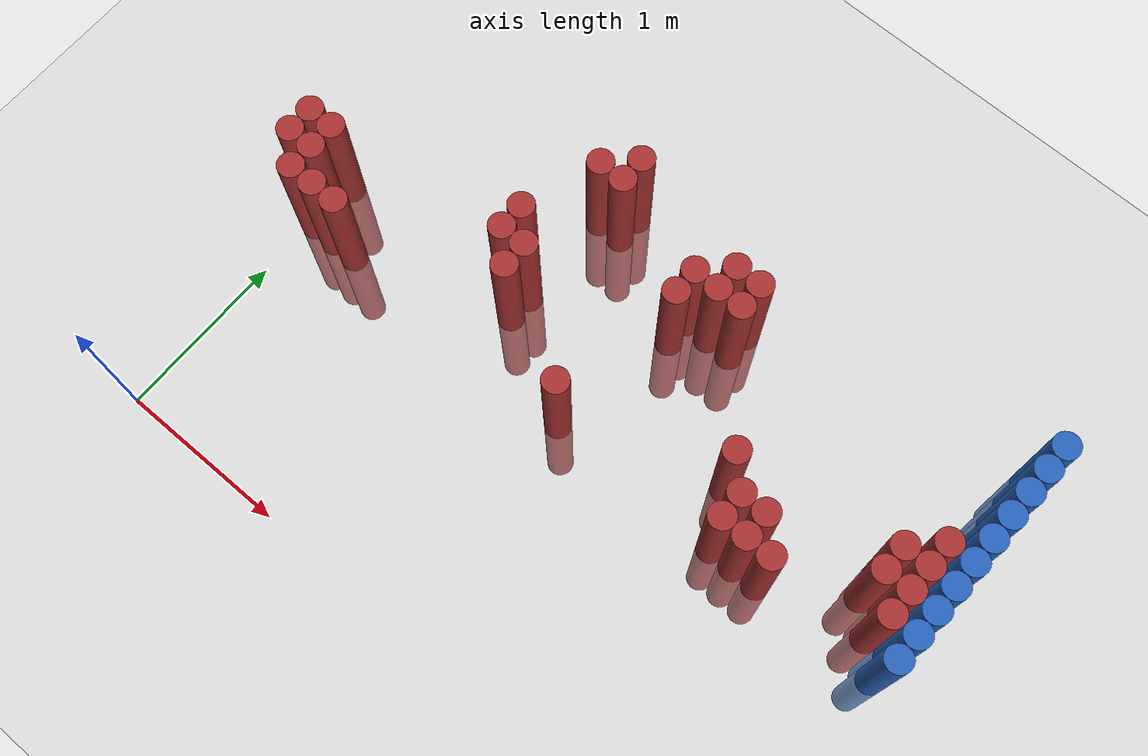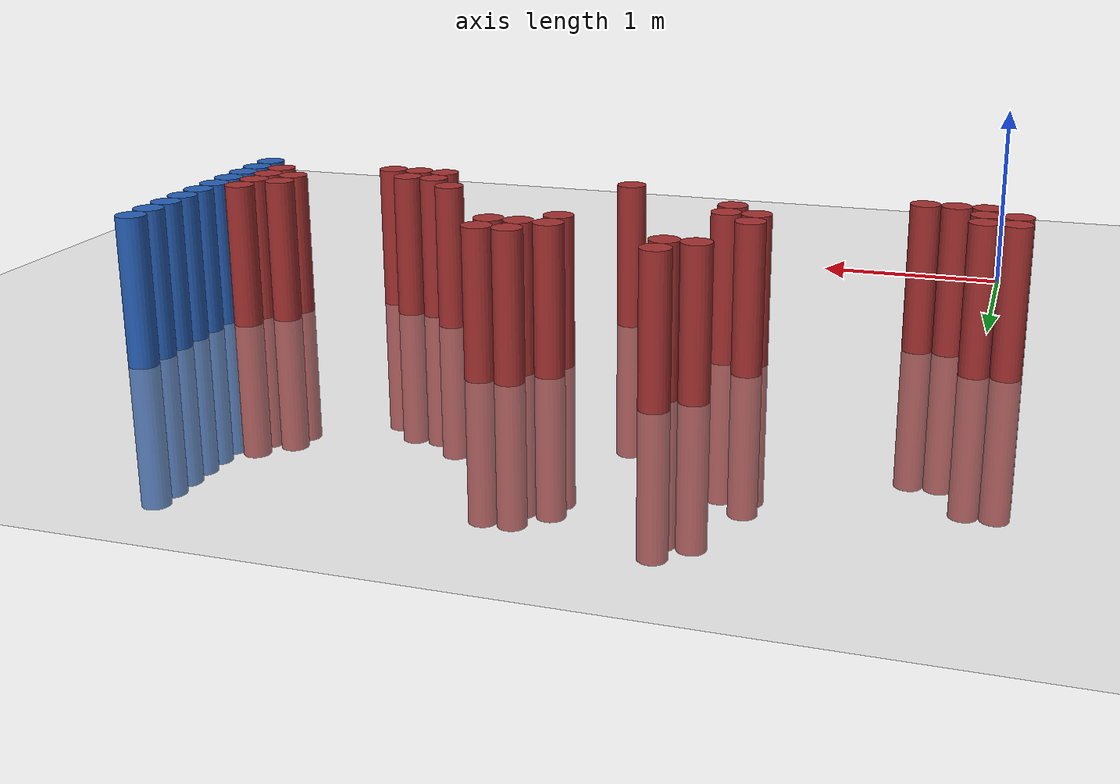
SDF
<sdf version="1.6">
 <world name="default">
  <model name="ground_plane">
   <static>1</static>
   <link name="link">
    <collision name="collision">
     <geometry><plane><normal>0 0 1</normal><size>100 100</size></plane></geometry>
     <surface><friction><ode><mu>100</mu><mu2>50</mu2></ode></friction></surface>
    </collision>
    <visual name="visual">
     <cast_shadows>0</cast_shadows>
     <geometry><plane><normal>0 0 1</normal><size>100 100</size></plane></geometry>
     <material>
      <script><uri>file://media/materials/scripts/gazebo.material</uri><name>Gazebo/Grey</name></script>
     </material>
    </visual>
   </link>
  </model>
  <model name="unit_cylinder_134">
   <static>1</static>
   <pose>3.925000 1.525000 0.000000 0.000000 0.000000 0.000000</pose>
   <link name="link">
    <inertial>
     <mass>1</mass>
     <inertia><ixx>0.145833</ixx><ixy>0</ixy><ixz>0</ixz><iyy>0.145833</iyy><iyz>0</iyz><izz>0.125</izz></inertia>
    </inertial>
    <collision name="collision">
     <geometry><cylinder><radius>0.075000</radius><length>1.5</length></cylinder></geometry>
    </collision>
    <visual name="visual">
     <geometry><cylinder><radius>0.075000</radius><length>1.5</length></cylinder></geometry>
     <material>
      <ambient>0.152000 0.379000 0.720000 1</ambient>
      <diffuse>0.152000 0.379000 0.720000 1</diffuse>
     </material>
     <material>
      <script><name>Gazebo/Grey</name><uri>file://media/materials/scripts/gazebo.material</uri></script>
     </material>
    </visual>
   </link>
  </model>
  <model name="unit_cylinder_136">
   <static>1</static>
   <pose>3.925000 1.675000 0.000000 0.000000 0.000000 0.000000</pose>
   <link name="link">
    <inertial>
     <mass>1</mass>
     <inertia><ixx>0.145833</ixx><ixy>0</ixy><ixz>0</ixz><iyy>0.145833</iyy><iyz>0</iyz><izz>0.125</izz></inertia>
    </inertial>
    <collision name="collision">
     <geometry><cylinder><radius>0.075000</radius><length>1.5</length></cylinder></geometry>
    </collision>
    <visual name="visual">
     <geometry><cylinder><radius>0.075000</radius><length>1.5</length></cylinder></geometry>
     <material>
      <ambient>0.152000 0.379000 0.720000 1</ambient>
      <diffuse>0.152000 0.379000 0.720000 1</diffuse>
     </material>
     <material>
      <script><name>Gazebo/Grey</name><uri>file://media/materials/scripts/gazebo.material</uri></script>
     </material>
    </visual>
   </link>
  </model>
  <model name="unit_cylinder_138">
   <static>1</static>
   <pose>3.925000 1.825000 0.000000 0.000000 0.000000 0.000000</pose>
   <link name="link">
    <inertial>
     <mass>1</mass>
     <inertia><ixx>0.145833</ixx><ixy>0</ixy><ixz>0</ixz><iyy>0.145833</iyy><iyz>0</iyz><izz>0.125</izz></inertia>
    </inertial>
    <collision name="collision">
     <geometry><cylinder><radius>0.075000</radius><length>1.5</length></cylinder></geometry>
    </collision>
    <visual name="visual">
     <geometry><cylinder><radius>0.075000</radius><length>1.5</length></cylinder></geometry>
     <material>
      <ambient>0.152000 0.379000 0.720000 1</ambient>
      <diffuse>0.152000 0.379000 0.720000 1</diffuse>
     </material>
     <material>
      <script><name>Gazebo/Grey</name><uri>file://media/materials/scripts/gazebo.material</uri></script>
     </material>
    </visual>
   </link>
  </model>
  <model name="unit_cylinder_140">
   <static>1</static>
   <pose>3.925000 1.975000 0.000000 0.000000 0.000000 0.000000</pose>
   <link name="link">
    <inertial>
     <mass>1</mass>
     <inertia><ixx>0.145833</ixx><ixy>0</ixy><ixz>0</ixz><iyy>0.145833</iyy><iyz>0</iyz><izz>0.125</izz></inertia>
    </inertial>
    <collision name="collision">
     <geometry><cylinder><radius>0.075000</radius><length>1.5</length></cylinder></geometry>
    </collision>
    <visual name="visual">
     <geometry><cylinder><radius>0.075000</radius><length>1.5</length></cylinder></geometry>
     <material>
      <ambient>0.152000 0.379000 0.720000 1</ambient>
      <diffuse>0.152000 0.379000 0.720000 1</diffuse>
     </material>
     <material>
      <script><name>Gazebo/Grey</name><uri>file://media/materials/scripts/gazebo.material</uri></script>
     </material>
    </visual>
   </link>
  </model>
  <model name="unit_cylinder_142">
   <static>1</static>
   <pose>3.925000 2.125000 0.000000 0.000000 0.000000 0.000000</pose>
   <link name="link">
    <inertial>
     <mass>1</mass>
     <inertia><ixx>0.145833</ixx><ixy>0</ixy><ixz>0</ixz><iyy>0.145833</iyy><iyz>0</iyz><izz>0.125</izz></inertia>
    </inertial>
    <collision name="collision">
     <geometry><cylinder><radius>0.075000</radius><length>1.5</length></cylinder></geometry>
    </collision>
    <visual name="visual">
     <geometry><cylinder><radius>0.075000</radius><length>1.5</length></cylinder></geometry>
     <material>
      <ambient>0.152000 0.379000 0.720000 1</ambient>
      <diffuse>0.152000 0.379000 0.720000 1</diffuse>
     </material>
     <material>
      <script><name>Gazebo/Grey</name><uri>file://media/materials/scripts/gazebo.material</uri></script>
     </material>
    </visual>
   </link>
  </model>
  <model name="unit_cylinder_144">
   <static>1</static>
   <pose>3.925000 2.275000 0.000000 0.000000 0.000000 0.000000</pose>
   <link name="link">
    <inertial>
     <mass>1</mass>
     <inertia><ixx>0.145833</ixx><ixy>0</ixy><ixz>0</ixz><iyy>0.145833</iyy><iyz>0</iyz><izz>0.125</izz></inertia>
    </inertial>
    <collision name="collision">
     <geometry><cylinder><radius>0.075000</radius><length>1.5</length></cylinder></geometry>
    </collision>
    <visual name="visual">
     <geometry><cylinder><radius>0.075000</radius><length>1.5</length></cylinder></geometry>
     <material>
      <ambient>0.152000 0.379000 0.720000 1</ambient>
      <diffuse>0.152000 0.379000 0.720000 1</diffuse>
     </material>
     <material>
      <script><name>Gazebo/Grey</name><uri>file://media/materials/scripts/gazebo.material</uri></script>
     </material>
    </visual>
   </link>
  </model>
  <model name="unit_cylinder_146">
   <static>1</static>
   <pose>3.925000 2.425000 0.000000 0.000000 0.000000 0.000000</pose>
   <link name="link">
    <inertial>
     <mass>1</mass>
     <inertia><ixx>0.145833</ixx><ixy>0</ixy><ixz>0</ixz><iyy>0.145833</iyy><iyz>0</iyz><izz>0.125</izz></inertia>
    </inertial>
    <collision name="collision">
     <geometry><cylinder><radius>0.075000</radius><length>1.5</length></cylinder></geometry>
    </collision>
    <visual name="visual">
     <geometry><cylinder><radius>0.075000</radius><length>1.5</length></cylinder></geometry>
     <material>
      <ambient>0.152000 0.379000 0.720000 1</ambient>
      <diffuse>0.152000 0.379000 0.720000 1</diffuse>
     </material>
     <material>
      <script><name>Gazebo/Grey</name><uri>file://media/materials/scripts/gazebo.material</uri></script>
     </material>
    </visual>
   </link>
  </model>
  <model name="unit_cylinder_148">
   <static>1</static>
   <pose>3.925000 2.575000 0.000000 0.000000 0.000000 0.000000</pose>
   <link name="link">
    <inertial>
     <mass>1</mass>
     <inertia><ixx>0.145833</ixx><ixy>0</ixy><ixz>0</ixz><iyy>0.145833</iyy><iyz>0</iyz><izz>0.125</izz></inertia>
    </inertial>
    <collision name="collision">
     <geometry><cylinder><radius>0.075000</radius><length>1.5</length></cylinder></geometry>
    </collision>
    <visual name="visual">
     <geometry><cylinder><radius>0.075000</radius><length>1.5</length></cylinder></geometry>
     <material>
      <ambient>0.152000 0.379000 0.720000 1</ambient>
      <diffuse>0.152000 0.379000 0.720000 1</diffuse>
     </material>
     <material>
      <script><name>Gazebo/Grey</name><uri>file://media/materials/scripts/gazebo.material</uri></script>
     </material>
    </visual>
   </link>
  </model>
  <model name="unit_cylinder_150">
   <static>1</static>
   <pose>3.925000 2.725000 0.000000 0.000000 0.000000 0.000000</pose>
   <link name="link">
    <inertial>
     <mass>1</mass>
     <inertia><ixx>0.145833</ixx><ixy>0</ixy><ixz>0</ixz><iyy>0.145833</iyy><iyz>0</iyz><izz>0.125</izz></inertia>
    </inertial>
    <collision name="collision">
     <geometry><cylinder><radius>0.075000</radius><length>1.5</length></cylinder></geometry>
    </collision>
    <visual name="visual">
     <geometry><cylinder><radius>0.075000</radius><length>1.5</length></cylinder></geometry>
     <material>
      <ambient>0.152000 0.379000 0.720000 1</ambient>
      <diffuse>0.152000 0.379000 0.720000 1</diffuse>
     </material>
     <material>
      <script><name>Gazebo/Grey</name><uri>file://media/materials/scripts/gazebo.material</uri></script>
     </material>
    </visual>
   </link>
  </model>
  <model name="unit_cylinder_328">
   <static>1</static>
   <pose>-0.125000 1.525000 0.000000 0.000000 0.000000 0.000000</pose>
   <link name="link">
    <inertial>
     <mass>1</mass>
     <inertia><ixx>0.145833</ixx><ixy>0</ixy><ixz>0</ixz><iyy>0.145833</iyy><iyz>0</iyz><izz>0.125</izz></inertia>
    </inertial>
    <collision name="collision">
     <geometry><cylinder><radius>0.075000</radius><length>1.5</length></cylinder></geometry>
    </collision>
    <visual name="visual">
     <geometry><cylinder><radius>0.075000</radius><length>1.5</length></cylinder></geometry>
     <material>
      <ambient>0.648000 0.192000 0.192000 1</ambient>
      <diffuse>0.648000 0.192000 0.192000 1</diffuse>
     </material>
     <material>
      <script><name>Gazebo/Grey</name><uri>file://media/materials/scripts/gazebo.material</uri></script>
     </material>
    </visual>
   </link>
  </model>
  <model name="unit_cylinder_329">
   <static>1</static>
   <pose>-0.125000 1.675000 0.000000 0.000000 0.000000 0.000000</pose>
   <link name="link">
    <inertial>
     <mass>1</mass>
     <inertia><ixx>0.145833</ixx><ixy>0</ixy><ixz>0</ixz><iyy>0.145833</iyy><iyz>0</iyz><izz>0.125</izz></inertia>
    </inertial>
    <collision name="collision">
     <geometry><cylinder><radius>0.075000</radius><length>1.5</length></cylinder></geometry>
    </collision>
    <visual name="visual">
     <geometry><cylinder><radius>0.075000</radius><length>1.5</length></cylinder></geometry>
     <material>
      <ambient>0.648000 0.192000 0.192000 1</ambient>
      <diffuse>0.648000 0.192000 0.192000 1</diffuse>
     </material>
     <material>
      <script><name>Gazebo/Grey</name><uri>file://media/materials/scripts/gazebo.material</uri></script>
     </material>
    </visual>
   </link>
  </model>
  <model name="unit_cylinder_333">
   <static>1</static>
   <pose>0.025000 1.375000 0.000000 0.000000 0.000000 0.000000</pose>
   <link name="link">
    <inertial>
     <mass>1</mass>
     <inertia><ixx>0.145833</ixx><ixy>0</ixy><ixz>0</ixz><iyy>0.145833</iyy><iyz>0</iyz><izz>0.125</izz></inertia>
    </inertial>
    <collision name="collision">
     <geometry><cylinder><radius>0.075000</radius><length>1.5</length></cylinder></geometry>
    </collision>
    <visual name="visual">
     <geometry><cylinder><radius>0.075000</radius><length>1.5</length></cylinder></geometry>
     <material>
      <ambient>0.648000 0.192000 0.192000 1</ambient>
      <diffuse>0.648000 0.192000 0.192000 1</diffuse>
     </material>
     <material>
      <script><name>Gazebo/Grey</name><uri>file://media/materials/scripts/gazebo.material</uri></script>
     </material>
    </visual>
   </link>
  </model>
  <model name="unit_cylinder_334">
   <static>1</static>
   <pose>0.025000 1.525000 0.000000 0.000000 0.000000 0.000000</pose>
   <link name="link">
    <inertial>
     <mass>1</mass>
     <inertia><ixx>0.145833</ixx><ixy>0</ixy><ixz>0</ixz><iyy>0.145833</iyy><iyz>0</iyz><izz>0.125</izz></inertia>
    </inertial>
    <collision name="collision">
     <geometry><cylinder><radius>0.075000</radius><length>1.5</length></cylinder></geometry>
    </collision>
    <visual name="visual">
     <geometry><cylinder><radius>0.075000</radius><length>1.5</length></cylinder></geometry>
     <material>
      <ambient>0.648000 0.192000 0.192000 1</ambient>
      <diffuse>0.648000 0.192000 0.192000 1</diffuse>
     </material>
     <material>
      <script><name>Gazebo/Grey</name><uri>file://media/materials/scripts/gazebo.material</uri></script>
     </material>
    </visual>
   </link>
  </model>
  <model name="unit_cylinder_335">
   <static>1</static>
   <pose>0.025000 1.675000 0.000000 0.000000 0.000000 0.000000</pose>
   <link name="link">
    <inertial>
     <mass>1</mass>
     <inertia><ixx>0.145833</ixx><ixy>0</ixy><ixz>0</ixz><iyy>0.145833</iyy><iyz>0</iyz><izz>0.125</izz></inertia>
    </inertial>
    <collision name="collision">
     <geometry><cylinder><radius>0.075000</radius><length>1.5</length></cylinder></geometry>
    </collision>
    <visual name="visual">
     <geometry><cylinder><radius>0.075000</radius><length>1.5</length></cylinder></geometry>
     <material>
      <ambient>0.648000 0.192000 0.192000 1</ambient>
      <diffuse>0.648000 0.192000 0.192000 1</diffuse>
     </material>
     <material>
      <script><name>Gazebo/Grey</name><uri>file://media/materials/scripts/gazebo.material</uri></script>
     </material>
    </visual>
   </link>
  </model>
  <model name="unit_cylinder_339">
   <static>1</static>
   <pose>0.175000 1.375000 0.000000 0.000000 0.000000 0.000000</pose>
   <link name="link">
    <inertial>
     <mass>1</mass>
     <inertia><ixx>0.145833</ixx><ixy>0</ixy><ixz>0</ixz><iyy>0.145833</iyy><iyz>0</iyz><izz>0.125</izz></inertia>
    </inertial>
    <collision name="collision">
     <geometry><cylinder><radius>0.075000</radius><length>1.5</length></cylinder></geometry>
    </collision>
    <visual name="visual">
     <geometry><cylinder><radius>0.075000</radius><length>1.5</length></cylinder></geometry>
     <material>
      <ambient>0.648000 0.192000 0.192000 1</ambient>
      <diffuse>0.648000 0.192000 0.192000 1</diffuse>
     </material>
     <material>
      <script><name>Gazebo/Grey</name><uri>file://media/materials/scripts/gazebo.material</uri></script>
     </material>
    </visual>
   </link>
  </model>
  <model name="unit_cylinder_343">
   <static>1</static>
   <pose>0.325000 1.375000 0.000000 0.000000 0.000000 0.000000</pose>
   <link name="link">
    <inertial>
     <mass>1</mass>
     <inertia><ixx>0.145833</ixx><ixy>0</ixy><ixz>0</ixz><iyy>0.145833</iyy><iyz>0</iyz><izz>0.125</izz></inertia>
    </inertial>
    <collision name="collision">
     <geometry><cylinder><radius>0.075000</radius><length>1.5</length></cylinder></geometry>
    </collision>
    <visual name="visual">
     <geometry><cylinder><radius>0.075000</radius><length>1.5</length></cylinder></geometry>
     <material>
      <ambient>0.648000 0.192000 0.192000 1</ambient>
      <diffuse>0.648000 0.192000 0.192000 1</diffuse>
     </material>
     <material>
      <script><name>Gazebo/Grey</name><uri>file://media/materials/scripts/gazebo.material</uri></script>
     </material>
    </visual>
   </link>
  </model>
  <model name="unit_cylinder_347">
   <static>1</static>
   <pose>1.075000 1.825000 0.000000 0.000000 0.000000 0.000000</pose>
   <link name="link">
    <inertial>
     <mass>1</mass>
     <inertia><ixx>0.145833</ixx><ixy>0</ixy><ixz>0</ixz><iyy>0.145833</iyy><iyz>0</iyz><izz>0.125</izz></inertia>
    </inertial>
    <collision name="collision">
     <geometry><cylinder><radius>0.075000</radius><length>1.5</length></cylinder></geometry>
    </collision>
    <visual name="visual">
     <geometry><cylinder><radius>0.075000</radius><length>1.5</length></cylinder></geometry>
     <material>
      <ambient>0.648000 0.192000 0.192000 1</ambient>
      <diffuse>0.648000 0.192000 0.192000 1</diffuse>
     </material>
     <material>
      <script><name>Gazebo/Grey</name><uri>file://media/materials/scripts/gazebo.material</uri></script>
     </material>
    </visual>
   </link>
  </model>
  <model name="unit_cylinder_348">
   <static>1</static>
   <pose>1.075000 1.975000 0.000000 0.000000 0.000000 0.000000</pose>
   <link name="link">
    <inertial>
     <mass>1</mass>
     <inertia><ixx>0.145833</ixx><ixy>0</ixy><ixz>0</ixz><iyy>0.145833</iyy><iyz>0</iyz><izz>0.125</izz></inertia>
    </inertial>
    <collision name="collision">
     <geometry><cylinder><radius>0.075000</radius><length>1.5</length></cylinder></geometry>
    </collision>
    <visual name="visual">
     <geometry><cylinder><radius>0.075000</radius><length>1.5</length></cylinder></geometry>
     <material>
      <ambient>0.648000 0.192000 0.192000 1</ambient>
      <diffuse>0.648000 0.192000 0.192000 1</diffuse>
     </material>
     <material>
      <script><name>Gazebo/Grey</name><uri>file://media/materials/scripts/gazebo.material</uri></script>
     </material>
    </visual>
   </link>
  </model>
  <model name="unit_cylinder_353">
   <static>1</static>
   <pose>1.225000 1.675000 0.000000 0.000000 0.000000 0.000000</pose>
   <link name="link">
    <inertial>
     <mass>1</mass>
     <inertia><ixx>0.145833</ixx><ixy>0</ixy><ixz>0</ixz><iyy>0.145833</iyy><iyz>0</iyz><izz>0.125</izz></inertia>
    </inertial>
    <collision name="collision">
     <geometry><cylinder><radius>0.075000</radius><length>1.5</length></cylinder></geometry>
    </collision>
    <visual name="visual">
     <geometry><cylinder><radius>0.075000</radius><length>1.5</length></cylinder></geometry>
     <material>
      <ambient>0.648000 0.192000 0.192000 1</ambient>
      <diffuse>0.648000 0.192000 0.192000 1</diffuse>
     </material>
     <material>
      <script><name>Gazebo/Grey</name><uri>file://media/materials/scripts/gazebo.material</uri></script>
     </material>
    </visual>
   </link>
  </model>
  <model name="unit_cylinder_354">
   <static>1</static>
   <pose>1.225000 1.825000 0.000000 0.000000 0.000000 0.000000</pose>
   <link name="link">
    <inertial>
     <mass>1</mass>
     <inertia><ixx>0.145833</ixx><ixy>0</ixy><ixz>0</ixz><iyy>0.145833</iyy><iyz>0</iyz><izz>0.125</izz></inertia>
    </inertial>
    <collision name="collision">
     <geometry><cylinder><radius>0.075000</radius><length>1.5</length></cylinder></geometry>
    </collision>
    <visual name="visual">
     <geometry><cylinder><radius>0.075000</radius><length>1.5</length></cylinder></geometry>
     <material>
      <ambient>0.648000 0.192000 0.192000 1</ambient>
      <diffuse>0.648000 0.192000 0.192000 1</diffuse>
     </material>
     <material>
      <script><name>Gazebo/Grey</name><uri>file://media/materials/scripts/gazebo.material</uri></script>
     </material>
    </visual>
   </link>
  </model>
  <model name="unit_cylinder_355">
   <static>1</static>
   <pose>1.225000 2.425000 0.000000 0.000000 0.000000 0.000000</pose>
   <link name="link">
    <inertial>
     <mass>1</mass>
     <inertia><ixx>0.145833</ixx><ixy>0</ixy><ixz>0</ixz><iyy>0.145833</iyy><iyz>0</iyz><izz>0.125</izz></inertia>
    </inertial>
    <collision name="collision">
     <geometry><cylinder><radius>0.075000</radius><length>1.5</length></cylinder></geometry>
    </collision>
    <visual name="visual">
     <geometry><cylinder><radius>0.075000</radius><length>1.5</length></cylinder></geometry>
     <material>
      <ambient>0.648000 0.192000 0.192000 1</ambient>
      <diffuse>0.648000 0.192000 0.192000 1</diffuse>
     </material>
     <material>
      <script><name>Gazebo/Grey</name><uri>file://media/materials/scripts/gazebo.material</uri></script>
     </material>
    </visual>
   </link>
  </model>
  <model name="unit_cylinder_357">
   <static>1</static>
   <pose>1.375000 2.425000 0.000000 0.000000 0.000000 0.000000</pose>
   <link name="link">
    <inertial>
     <mass>1</mass>
     <inertia><ixx>0.145833</ixx><ixy>0</ixy><ixz>0</ixz><iyy>0.145833</iyy><iyz>0</iyz><izz>0.125</izz></inertia>
    </inertial>
    <collision name="collision">
     <geometry><cylinder><radius>0.075000</radius><length>1.5</length></cylinder></geometry>
    </collision>
    <visual name="visual">
     <geometry><cylinder><radius>0.075000</radius><length>1.5</length></cylinder></geometry>
     <material>
      <ambient>0.648000 0.192000 0.192000 1</ambient>
      <diffuse>0.648000 0.192000 0.192000 1</diffuse>
     </material>
     <material>
      <script><name>Gazebo/Grey</name><uri>file://media/materials/scripts/gazebo.material</uri></script>
     </material>
    </visual>
   </link>
  </model>
  <model name="unit_cylinder_358">
   <static>1</static>
   <pose>1.375000 2.575000 0.000000 0.000000 0.000000 0.000000</pose>
   <link name="link">
    <inertial>
     <mass>1</mass>
     <inertia><ixx>0.145833</ixx><ixy>0</ixy><ixz>0</ixz><iyy>0.145833</iyy><iyz>0</iyz><izz>0.125</izz></inertia>
    </inertial>
    <collision name="collision">
     <geometry><cylinder><radius>0.075000</radius><length>1.5</length></cylinder></geometry>
    </collision>
    <visual name="visual">
     <geometry><cylinder><radius>0.075000</radius><length>1.5</length></cylinder></geometry>
     <material>
      <ambient>0.648000 0.192000 0.192000 1</ambient>
      <diffuse>0.648000 0.192000 0.192000 1</diffuse>
     </material>
     <material>
      <script><name>Gazebo/Grey</name><uri>file://media/materials/scripts/gazebo.material</uri></script>
     </material>
    </visual>
   </link>
  </model>
  <model name="unit_cylinder_377">
   <static>1</static>
   <pose>1.825000 1.375000 0.000000 0.000000 0.000000 0.000000</pose>
   <link name="link">
    <inertial>
     <mass>1</mass>
     <inertia><ixx>0.145833</ixx><ixy>0</ixy><ixz>0</ixz><iyy>0.145833</iyy><iyz>0</iyz><izz>0.125</izz></inertia>
    </inertial>
    <collision name="collision">
     <geometry><cylinder><radius>0.075000</radius><length>1.5</length></cylinder></geometry>
    </collision>
    <visual name="visual">
     <geometry><cylinder><radius>0.075000</radius><length>1.5</length></cylinder></geometry>
     <material>
      <ambient>0.648000 0.192000 0.192000 1</ambient>
      <diffuse>0.648000 0.192000 0.192000 1</diffuse>
     </material>
     <material>
      <script><name>Gazebo/Grey</name><uri>file://media/materials/scripts/gazebo.material</uri></script>
     </material>
    </visual>
   </link>
  </model>
  <model name="unit_cylinder_381">
   <static>1</static>
   <pose>1.975000 2.125000 0.000000 0.000000 0.000000 0.000000</pose>
   <link name="link">
    <inertial>
     <mass>1</mass>
     <inertia><ixx>0.145833</ixx><ixy>0</ixy><ixz>0</ixz><iyy>0.145833</iyy><iyz>0</iyz><izz>0.125</izz></inertia>
    </inertial>
    <collision name="collision">
     <geometry><cylinder><radius>0.075000</radius><length>1.5</length></cylinder></geometry>
    </collision>
    <visual name="visual">
     <geometry><cylinder><radius>0.075000</radius><length>1.5</length></cylinder></geometry>
     <material>
      <ambient>0.648000 0.192000 0.192000 1</ambient>
      <diffuse>0.648000 0.192000 0.192000 1</diffuse>
     </material>
     <material>
      <script><name>Gazebo/Grey</name><uri>file://media/materials/scripts/gazebo.material</uri></script>
     </material>
    </visual>
   </link>
  </model>
  <model name="unit_cylinder_382">
   <static>1</static>
   <pose>1.975000 2.275000 0.000000 0.000000 0.000000 0.000000</pose>
   <link name="link">
    <inertial>
     <mass>1</mass>
     <inertia><ixx>0.145833</ixx><ixy>0</ixy><ixz>0</ixz><iyy>0.145833</iyy><iyz>0</iyz><izz>0.125</izz></inertia>
    </inertial>
    <collision name="collision">
     <geometry><cylinder><radius>0.075000</radius><length>1.5</length></cylinder></geometry>
    </collision>
    <visual name="visual">
     <geometry><cylinder><radius>0.075000</radius><length>1.5</length></cylinder></geometry>
     <material>
      <ambient>0.648000 0.192000 0.192000 1</ambient>
      <diffuse>0.648000 0.192000 0.192000 1</diffuse>
     </material>
     <material>
      <script><name>Gazebo/Grey</name><uri>file://media/materials/scripts/gazebo.material</uri></script>
     </material>
    </visual>
   </link>
  </model>
  <model name="unit_cylinder_385">
   <static>1</static>
   <pose>2.125000 2.275000 0.000000 0.000000 0.000000 0.000000</pose>
   <link name="link">
    <inertial>
     <mass>1</mass>
     <inertia><ixx>0.145833</ixx><ixy>0</ixy><ixz>0</ixz><iyy>0.145833</iyy><iyz>0</iyz><izz>0.125</izz></inertia>
    </inertial>
    <collision name="collision">
     <geometry><cylinder><radius>0.075000</radius><length>1.5</length></cylinder></geometry>
    </collision>
    <visual name="visual">
     <geometry><cylinder><radius>0.075000</radius><length>1.5</length></cylinder></geometry>
     <material>
      <ambient>0.648000 0.192000 0.192000 1</ambient>
      <diffuse>0.648000 0.192000 0.192000 1</diffuse>
     </material>
     <material>
      <script><name>Gazebo/Grey</name><uri>file://media/materials/scripts/gazebo.material</uri></script>
     </material>
    </visual>
   </link>
  </model>
  <model name="unit_cylinder_386">
   <static>1</static>
   <pose>2.125000 2.425000 0.000000 0.000000 0.000000 0.000000</pose>
   <link name="link">
    <inertial>
     <mass>1</mass>
     <inertia><ixx>0.145833</ixx><ixy>0</ixy><ixz>0</ixz><iyy>0.145833</iyy><iyz>0</iyz><izz>0.125</izz></inertia>
    </inertial>
    <collision name="collision">
     <geometry><cylinder><radius>0.075000</radius><length>1.5</length></cylinder></geometry>
    </collision>
    <visual name="visual">
     <geometry><cylinder><radius>0.075000</radius><length>1.5</length></cylinder></geometry>
     <material>
      <ambient>0.648000 0.192000 0.192000 1</ambient>
      <diffuse>0.648000 0.192000 0.192000 1</diffuse>
     </material>
     <material>
      <script><name>Gazebo/Grey</name><uri>file://media/materials/scripts/gazebo.material</uri></script>
     </material>
    </visual>
   </link>
  </model>
  <model name="unit_cylinder_388">
   <static>1</static>
   <pose>2.275000 2.275000 0.000000 0.000000 0.000000 0.000000</pose>
   <link name="link">
    <inertial>
     <mass>1</mass>
     <inertia><ixx>0.145833</ixx><ixy>0</ixy><ixz>0</ixz><iyy>0.145833</iyy><iyz>0</iyz><izz>0.125</izz></inertia>
    </inertial>
    <collision name="collision">
     <geometry><cylinder><radius>0.075000</radius><length>1.5</length></cylinder></geometry>
    </collision>
    <visual name="visual">
     <geometry><cylinder><radius>0.075000</radius><length>1.5</length></cylinder></geometry>
     <material>
      <ambient>0.648000 0.192000 0.192000 1</ambient>
      <diffuse>0.648000 0.192000 0.192000 1</diffuse>
     </material>
     <material>
      <script><name>Gazebo/Grey</name><uri>file://media/materials/scripts/gazebo.material</uri></script>
     </material>
    </visual>
   </link>
  </model>
  <model name="unit_cylinder_389">
   <static>1</static>
   <pose>2.275000 2.425000 0.000000 0.000000 0.000000 0.000000</pose>
   <link name="link">
    <inertial>
     <mass>1</mass>
     <inertia><ixx>0.145833</ixx><ixy>0</ixy><ixz>0</ixz><iyy>0.145833</iyy><iyz>0</iyz><izz>0.125</izz></inertia>
    </inertial>
    <collision name="collision">
     <geometry><cylinder><radius>0.075000</radius><length>1.5</length></cylinder></geometry>
    </collision>
    <visual name="visual">
     <geometry><cylinder><radius>0.075000</radius><length>1.5</length></cylinder></geometry>
     <material>
      <ambient>0.648000 0.192000 0.192000 1</ambient>
      <diffuse>0.648000 0.192000 0.192000 1</diffuse>
     </material>
     <material>
      <script><name>Gazebo/Grey</name><uri>file://media/materials/scripts/gazebo.material</uri></script>
     </material>
    </visual>
   </link>
  </model>
  <model name="unit_cylinder_407">
   <static>1</static>
   <pose>2.725000 1.675000 0.000000 0.000000 0.000000 0.000000</pose>
   <link name="link">
    <inertial>
     <mass>1</mass>
     <inertia><ixx>0.145833</ixx><ixy>0</ixy><ixz>0</ixz><iyy>0.145833</iyy><iyz>0</iyz><izz>0.125</izz></inertia>
    </inertial>
    <collision name="collision">
     <geometry><cylinder><radius>0.075000</radius><length>1.5</length></cylinder></geometry>
    </collision>
    <visual name="visual">
     <geometry><cylinder><radius>0.075000</radius><length>1.5</length></cylinder></geometry>
     <material>
      <ambient>0.648000 0.192000 0.192000 1</ambient>
      <diffuse>0.648000 0.192000 0.192000 1</diffuse>
     </material>
     <material>
      <script><name>Gazebo/Grey</name><uri>file://media/materials/scripts/gazebo.material</uri></script>
     </material>
    </visual>
   </link>
  </model>
  <model name="unit_cylinder_414">
   <static>1</static>
   <pose>2.875000 1.375000 0.000000 0.000000 0.000000 0.000000</pose>
   <link name="link">
    <inertial>
     <mass>1</mass>
     <inertia><ixx>0.145833</ixx><ixy>0</ixy><ixz>0</ixz><iyy>0.145833</iyy><iyz>0</iyz><izz>0.125</izz></inertia>
    </inertial>
    <collision name="collision">
     <geometry><cylinder><radius>0.075000</radius><length>1.5</length></cylinder></geometry>
    </collision>
    <visual name="visual">
     <geometry><cylinder><radius>0.075000</radius><length>1.5</length></cylinder></geometry>
     <material>
      <ambient>0.648000 0.192000 0.192000 1</ambient>
      <diffuse>0.648000 0.192000 0.192000 1</diffuse>
     </material>
     <material>
      <script><name>Gazebo/Grey</name><uri>file://media/materials/scripts/gazebo.material</uri></script>
     </material>
    </visual>
   </link>
  </model>
  <model name="unit_cylinder_415">
   <static>1</static>
   <pose>2.875000 1.525000 0.000000 0.000000 0.000000 0.000000</pose>
   <link name="link">
    <inertial>
     <mass>1</mass>
     <inertia><ixx>0.145833</ixx><ixy>0</ixy><ixz>0</ixz><iyy>0.145833</iyy><iyz>0</iyz><izz>0.125</izz></inertia>
    </inertial>
    <collision name="collision">
     <geometry><cylinder><radius>0.075000</radius><length>1.5</length></cylinder></geometry>
    </collision>
    <visual name="visual">
     <geometry><cylinder><radius>0.075000</radius><length>1.5</length></cylinder></geometry>
     <material>
      <ambient>0.648000 0.192000 0.192000 1</ambient>
      <diffuse>0.648000 0.192000 0.192000 1</diffuse>
     </material>
     <material>
      <script><name>Gazebo/Grey</name><uri>file://media/materials/scripts/gazebo.material</uri></script>
     </material>
    </visual>
   </link>
  </model>
  <model name="unit_cylinder_417">
   <static>1</static>
   <pose>3.025000 1.375000 0.000000 0.000000 0.000000 0.000000</pose>
   <link name="link">
    <inertial>
     <mass>1</mass>
     <inertia><ixx>0.145833</ixx><ixy>0</ixy><ixz>0</ixz><iyy>0.145833</iyy><iyz>0</iyz><izz>0.125</izz></inertia>
    </inertial>
    <collision name="collision">
     <geometry><cylinder><radius>0.075000</radius><length>1.5</length></cylinder></geometry>
    </collision>
    <visual name="visual">
     <geometry><cylinder><radius>0.075000</radius><length>1.5</length></cylinder></geometry>
     <material>
      <ambient>0.648000 0.192000 0.192000 1</ambient>
      <diffuse>0.648000 0.192000 0.192000 1</diffuse>
     </material>
     <material>
      <script><name>Gazebo/Grey</name><uri>file://media/materials/scripts/gazebo.material</uri></script>
     </material>
    </visual>
   </link>
  </model>
  <model name="unit_cylinder_418">
   <static>1</static>
   <pose>3.025000 1.525000 0.000000 0.000000 0.000000 0.000000</pose>
   <link name="link">
    <inertial>
     <mass>1</mass>
     <inertia><ixx>0.145833</ixx><ixy>0</ixy><ixz>0</ixz><iyy>0.145833</iyy><iyz>0</iyz><izz>0.125</izz></inertia>
    </inertial>
    <collision name="collision">
     <geometry><cylinder><radius>0.075000</radius><length>1.5</length></cylinder></geometry>
    </collision>
    <visual name="visual">
     <geometry><cylinder><radius>0.075000</radius><length>1.5</length></cylinder></geometry>
     <material>
      <ambient>0.648000 0.192000 0.192000 1</ambient>
      <diffuse>0.648000 0.192000 0.192000 1</diffuse>
     </material>
     <material>
      <script><name>Gazebo/Grey</name><uri>file://media/materials/scripts/gazebo.material</uri></script>
     </material>
    </visual>
   </link>
  </model>
  <model name="unit_cylinder_421">
   <static>1</static>
   <pose>3.175000 1.375000 0.000000 0.000000 0.000000 0.000000</pose>
   <link name="link">
    <inertial>
     <mass>1</mass>
     <inertia><ixx>0.145833</ixx><ixy>0</ixy><ixz>0</ixz><iyy>0.145833</iyy><iyz>0</iyz><izz>0.125</izz></inertia>
    </inertial>
    <collision name="collision">
     <geometry><cylinder><radius>0.075000</radius><length>1.5</length></cylinder></geometry>
    </collision>
    <visual name="visual">
     <geometry><cylinder><radius>0.075000</radius><length>1.5</length></cylinder></geometry>
     <material>
      <ambient>0.648000 0.192000 0.192000 1</ambient>
      <diffuse>0.648000 0.192000 0.192000 1</diffuse>
     </material>
     <material>
      <script><name>Gazebo/Grey</name><uri>file://media/materials/scripts/gazebo.material</uri></script>
     </material>
    </visual>
   </link>
  </model>
  <model name="unit_cylinder_444">
   <static>1</static>
   <pose>3.625000 1.675000 0.000000 0.000000 0.000000 0.000000</pose>
   <link name="link">
    <inertial>
     <mass>1</mass>
     <inertia><ixx>0.145833</ixx><ixy>0</ixy><ixz>0</ixz><iyy>0.145833</iyy><iyz>0</iyz><izz>0.125</izz></inertia>
    </inertial>
    <collision name="collision">
     <geometry><cylinder><radius>0.075000</radius><length>1.5</length></cylinder></geometry>
    </collision>
    <visual name="visual">
     <geometry><cylinder><radius>0.075000</radius><length>1.5</length></cylinder></geometry>
     <material>
      <ambient>0.648000 0.192000 0.192000 1</ambient>
      <diffuse>0.648000 0.192000 0.192000 1</diffuse>
     </material>
     <material>
      <script><name>Gazebo/Grey</name><uri>file://media/materials/scripts/gazebo.material</uri></script>
     </material>
    </visual>
   </link>
  </model>
  <model name="unit_cylinder_445">
   <static>1</static>
   <pose>3.625000 1.825000 0.000000 0.000000 0.000000 0.000000</pose>
   <link name="link">
    <inertial>
     <mass>1</mass>
     <inertia><ixx>0.145833</ixx><ixy>0</ixy><ixz>0</ixz><iyy>0.145833</iyy><iyz>0</iyz><izz>0.125</izz></inertia>
    </inertial>
    <collision name="collision">
     <geometry><cylinder><radius>0.075000</radius><length>1.5</length></cylinder></geometry>
    </collision>
    <visual name="visual">
     <geometry><cylinder><radius>0.075000</radius><length>1.5</length></cylinder></geometry>
     <material>
      <ambient>0.648000 0.192000 0.192000 1</ambient>
      <diffuse>0.648000 0.192000 0.192000 1</diffuse>
     </material>
     <material>
      <script><name>Gazebo/Grey</name><uri>file://media/materials/scripts/gazebo.material</uri></script>
     </material>
    </visual>
   </link>
  </model>
  <model name="unit_cylinder_453">
   <static>1</static>
   <pose>3.775000 1.525000 0.000000 0.000000 0.000000 0.000000</pose>
   <link name="link">
    <inertial>
     <mass>1</mass>
     <inertia><ixx>0.145833</ixx><ixy>0</ixy><ixz>0</ixz><iyy>0.145833</iyy><iyz>0</iyz><izz>0.125</izz></inertia>
    </inertial>
    <collision name="collision">
     <geometry><cylinder><radius>0.075000</radius><length>1.5</length></cylinder></geometry>
    </collision>
    <visual name="visual">
     <geometry><cylinder><radius>0.075000</radius><length>1.5</length></cylinder></geometry>
     <material>
      <ambient>0.648000 0.192000 0.192000 1</ambient>
      <diffuse>0.648000 0.192000 0.192000 1</diffuse>
     </material>
     <material>
      <script><name>Gazebo/Grey</name><uri>file://media/materials/scripts/gazebo.material</uri></script>
     </material>
    </visual>
   </link>
  </model>
  <model name="unit_cylinder_454">
   <static>1</static>
   <pose>3.775000 1.675000 0.000000 0.000000 0.000000 0.000000</pose>
   <link name="link">
    <inertial>
     <mass>1</mass>
     <inertia><ixx>0.145833</ixx><ixy>0</ixy><ixz>0</ixz><iyy>0.145833</iyy><iyz>0</iyz><izz>0.125</izz></inertia>
    </inertial>
    <collision name="collision">
     <geometry><cylinder><radius>0.075000</radius><length>1.5</length></cylinder></geometry>
    </collision>
    <visual name="visual">
     <geometry><cylinder><radius>0.075000</radius><length>1.5</length></cylinder></geometry>
     <material>
      <ambient>0.648000 0.192000 0.192000 1</ambient>
      <diffuse>0.648000 0.192000 0.192000 1</diffuse>
     </material>
     <material>
      <script><name>Gazebo/Grey</name><uri>file://media/materials/scripts/gazebo.material</uri></script>
     </material>
    </visual>
   </link>
  </model>
  <model name="unit_cylinder_455">
   <static>1</static>
   <pose>3.775000 1.825000 0.000000 0.000000 0.000000 0.000000</pose>
   <link name="link">
    <inertial>
     <mass>1</mass>
     <inertia><ixx>0.145833</ixx><ixy>0</ixy><ixz>0</ixz><iyy>0.145833</iyy><iyz>0</iyz><izz>0.125</izz></inertia>
    </inertial>
    <collision name="collision">
     <geometry><cylinder><radius>0.075000</radius><length>1.5</length></cylinder></geometry>
    </collision>
    <visual name="visual">
     <geometry><cylinder><radius>0.075000</radius><length>1.5</length></cylinder></geometry>
     <material>
      <ambient>0.648000 0.192000 0.192000 1</ambient>
      <diffuse>0.648000 0.192000 0.192000 1</diffuse>
     </material>
     <material>
      <script><name>Gazebo/Grey</name><uri>file://media/materials/scripts/gazebo.material</uri></script>
     </material>
    </visual>
   </link>
  </model>
  <model name="unit_cylinder_456">
   <static>1</static>
   <pose>3.775000 1.975000 0.000000 0.000000 0.000000 0.000000</pose>
   <link name="link">
    <inertial>
     <mass>1</mass>
     <inertia><ixx>0.145833</ixx><ixy>0</ixy><ixz>0</ixz><iyy>0.145833</iyy><iyz>0</iyz><izz>0.125</izz></inertia>
    </inertial>
    <collision name="collision">
     <geometry><cylinder><radius>0.075000</radius><length>1.5</length></cylinder></geometry>
    </collision>
    <visual name="visual">
     <geometry><cylinder><radius>0.075000</radius><length>1.5</length></cylinder></geometry>
     <material>
      <ambient>0.648000 0.192000 0.192000 1</ambient>
      <diffuse>0.648000 0.192000 0.192000 1</diffuse>
     </material>
     <material>
      <script><name>Gazebo/Grey</name><uri>file://media/materials/scripts/gazebo.material</uri></script>
     </material>
    </visual>
   </link>
  </model>
  <model name="unit_cylinder_489">
   <static>1</static>
   <pose>3.925000 1.375000 0.000000 0.000000 0.000000 0.000000</pose>
   <link name="link">
    <inertial>
     <mass>1</mass>
     <inertia><ixx>0.145833</ixx><ixy>0</ixy><ixz>0</ixz><iyy>0.145833</iyy><iyz>0</iyz><izz>0.125</izz></inertia>
    </inertial>
    <collision name="collision">
     <geometry><cylinder><radius>0.075000</radius><length>1.5</length></cylinder></geometry>
    </collision>
    <visual name="visual">
     <geometry><cylinder><radius>0.075000</radius><length>1.5</length></cylinder></geometry>
     <material>
      <ambient>0.152000 0.379000 0.720000 1</ambient>
      <diffuse>0.152000 0.379000 0.720000 1</diffuse>
     </material>
     <material>
      <script><name>Gazebo/Grey</name><uri>file://media/materials/scripts/gazebo.material</uri></script>
     </material>
    </visual>
   </link>
  </model>
  <model name="unit_cylinder_490">
   <static>1</static>
   <pose>3.925000 1.525000 0.000000 0.000000 0.000000 0.000000</pose>
   <link name="link">
    <inertial>
     <mass>1</mass>
     <inertia><ixx>0.145833</ixx><ixy>0</ixy><ixz>0</ixz><iyy>0.145833</iyy><iyz>0</iyz><izz>0.125</izz></inertia>
    </inertial>
    <collision name="collision">
     <geometry><cylinder><radius>0.075000</radius><length>1.5</length></cylinder></geometry>
    </collision>
    <visual name="visual">
     <geometry><cylinder><radius>0.075000</radius><length>1.5</length></cylinder></geometry>
     <material>
      <ambient>0.152000 0.379000 0.720000 1</ambient>
      <diffuse>0.152000 0.379000 0.720000 1</diffuse>
     </material>
     <material>
      <script><name>Gazebo/Grey</name><uri>file://media/materials/scripts/gazebo.material</uri></script>
     </material>
    </visual>
   </link>
  </model>
  <model name="unit_cylinder_491">
   <static>1</static>
   <pose>3.925000 1.675000 0.000000 0.000000 0.000000 0.000000</pose>
   <link name="link">
    <inertial>
     <mass>1</mass>
     <inertia><ixx>0.145833</ixx><ixy>0</ixy><ixz>0</ixz><iyy>0.145833</iyy><iyz>0</iyz><izz>0.125</izz></inertia>
    </inertial>
    <collision name="collision">
     <geometry><cylinder><radius>0.075000</radius><length>1.5</length></cylinder></geometry>
    </collision>
    <visual name="visual">
     <geometry><cylinder><radius>0.075000</radius><length>1.5</length></cylinder></geometry>
     <material>
      <ambient>0.152000 0.379000 0.720000 1</ambient>
      <diffuse>0.152000 0.379000 0.720000 1</diffuse>
     </material>
     <material>
      <script><name>Gazebo/Grey</name><uri>file://media/materials/scripts/gazebo.material</uri></script>
     </material>
    </visual>
   </link>
  </model>
  <model name="unit_cylinder_492">
   <static>1</static>
   <pose>3.925000 1.825000 0.000000 0.000000 0.000000 0.000000</pose>
   <link name="link">
    <inertial>
     <mass>1</mass>
     <inertia><ixx>0.145833</ixx><ixy>0</ixy><ixz>0</ixz><iyy>0.145833</iyy><iyz>0</iyz><izz>0.125</izz></inertia>
    </inertial>
    <collision name="collision">
     <geometry><cylinder><radius>0.075000</radius><length>1.5</length></cylinder></geometry>
    </collision>
    <visual name="visual">
     <geometry><cylinder><radius>0.075000</radius><length>1.5</length></cylinder></geometry>
     <material>
      <ambient>0.152000 0.379000 0.720000 1</ambient>
      <diffuse>0.152000 0.379000 0.720000 1</diffuse>
     </material>
     <material>
      <script><name>Gazebo/Grey</name><uri>file://media/materials/scripts/gazebo.material</uri></script>
     </material>
    </visual>
   </link>
  </model>
  <model name="unit_cylinder_493">
   <static>1</static>
   <pose>3.925000 1.975000 0.000000 0.000000 0.000000 0.000000</pose>
   <link name="link">
    <inertial>
     <mass>1</mass>
     <inertia><ixx>0.145833</ixx><ixy>0</ixy><ixz>0</ixz><iyy>0.145833</iyy><iyz>0</iyz><izz>0.125</izz></inertia>
    </inertial>
    <collision name="collision">
     <geometry><cylinder><radius>0.075000</radius><length>1.5</length></cylinder></geometry>
    </collision>
    <visual name="visual">
     <geometry><cylinder><radius>0.075000</radius><length>1.5</length></cylinder></geometry>
     <material>
      <ambient>0.152000 0.379000 0.720000 1</ambient>
      <diffuse>0.152000 0.379000 0.720000 1</diffuse>
     </material>
     <material>
      <script><name>Gazebo/Grey</name><uri>file://media/materials/scripts/gazebo.material</uri></script>
     </material>
    </visual>
   </link>
  </model>
  <model name="unit_cylinder_494">
   <static>1</static>
   <pose>3.925000 2.125000 0.000000 0.000000 0.000000 0.000000</pose>
   <link name="link">
    <inertial>
     <mass>1</mass>
     <inertia><ixx>0.145833</ixx><ixy>0</ixy><ixz>0</ixz><iyy>0.145833</iyy><iyz>0</iyz><izz>0.125</izz></inertia>
    </inertial>
    <collision name="collision">
     <geometry><cylinder><radius>0.075000</radius><length>1.5</length></cylinder></geometry>
    </collision>
    <visual name="visual">
     <geometry><cylinder><radius>0.075000</radius><length>1.5</length></cylinder></geometry>
     <material>
      <ambient>0.152000 0.379000 0.720000 1</ambient>
      <diffuse>0.152000 0.379000 0.720000 1</diffuse>
     </material>
     <material>
      <script><name>Gazebo/Grey</name><uri>file://media/materials/scripts/gazebo.material</uri></script>
     </material>
    </visual>
   </link>
  </model>
  <model name="unit_cylinder_495">
   <static>1</static>
   <pose>3.925000 2.275000 0.000000 0.000000 0.000000 0.000000</pose>
   <link name="link">
    <inertial>
     <mass>1</mass>
     <inertia><ixx>0.145833</ixx><ixy>0</ixy><ixz>0</ixz><iyy>0.145833</iyy><iyz>0</iyz><izz>0.125</izz></inertia>
    </inertial>
    <collision name="collision">
     <geometry><cylinder><radius>0.075000</radius><length>1.5</length></cylinder></geometry>
    </collision>
    <visual name="visual">
     <geometry><cylinder><radius>0.075000</radius><length>1.5</length></cylinder></geometry>
     <material>
      <ambient>0.152000 0.379000 0.720000 1</ambient>
      <diffuse>0.152000 0.379000 0.720000 1</diffuse>
     </material>
     <material>
      <script><name>Gazebo/Grey</name><uri>file://media/materials/scripts/gazebo.material</uri></script>
     </material>
    </visual>
   </link>
  </model>
  <model name="unit_cylinder_496">
   <static>1</static>
   <pose>3.925000 2.425000 0.000000 0.000000 0.000000 0.000000</pose>
   <link name="link">
    <inertial>
     <mass>1</mass>
     <inertia><ixx>0.145833</ixx><ixy>0</ixy><ixz>0</ixz><iyy>0.145833</iyy><iyz>0</iyz><izz>0.125</izz></inertia>
    </inertial>
    <collision name="collision">
     <geometry><cylinder><radius>0.075000</radius><length>1.5</length></cylinder></geometry>
    </collision>
    <visual name="visual">
     <geometry><cylinder><radius>0.075000</radius><length>1.5</length></cylinder></geometry>
     <material>
      <ambient>0.152000 0.379000 0.720000 1</ambient>
      <diffuse>0.152000 0.379000 0.720000 1</diffuse>
     </material>
     <material>
      <script><name>Gazebo/Grey</name><uri>file://media/materials/scripts/gazebo.material</uri></script>
     </material>
    </visual>
   </link>
  </model>
  <model name="unit_cylinder_497">
   <static>1</static>
   <pose>3.925000 2.575000 0.000000 0.000000 0.000000 0.000000</pose>
   <link name="link">
    <inertial>
     <mass>1</mass>
     <inertia><ixx>0.145833</ixx><ixy>0</ixy><ixz>0</ixz><iyy>0.145833</iyy><iyz>0</iyz><izz>0.125</izz></inertia>
    </inertial>
    <collision name="collision">
     <geometry><cylinder><radius>0.075000</radius><length>1.5</length></cylinder></geometry>
    </collision>
    <visual name="visual">
     <geometry><cylinder><radius>0.075000</radius><length>1.5</length></cylinder></geometry>
     <material>
      <ambient>0.152000 0.379000 0.720000 1</ambient>
      <diffuse>0.152000 0.379000 0.720000 1</diffuse>
     </material>
     <material>
      <script><name>Gazebo/Grey</name><uri>file://media/materials/scripts/gazebo.material</uri></script>
     </material>
    </visual>
   </link>
  </model>
  <model name="unit_cylinder_498">
   <static>1</static>
   <pose>3.925000 2.725000 0.000000 0.000000 0.000000 0.000000</pose>
   <link name="link">
    <inertial>
     <mass>1</mass>
     <inertia><ixx>0.145833</ixx><ixy>0</ixy><ixz>0</ixz><iyy>0.145833</iyy><iyz>0</iyz><izz>0.125</izz></inertia>
    </inertial>
    <collision name="collision">
     <geometry><cylinder><radius>0.075000</radius><length>1.5</length></cylinder></geometry>
    </collision>
    <visual name="visual">
     <geometry><cylinder><radius>0.075000</radius><length>1.5</length></cylinder></geometry>
     <material>
      <ambient>0.152000 0.379000 0.720000 1</ambient>
      <diffuse>0.152000 0.379000 0.720000 1</diffuse>
     </material>
     <material>
      <script><name>Gazebo/Grey</name><uri>file://media/materials/scripts/gazebo.material</uri></script>
     </material>
    </visual>
   </link>
  </model>
 </world>
</sdf>
